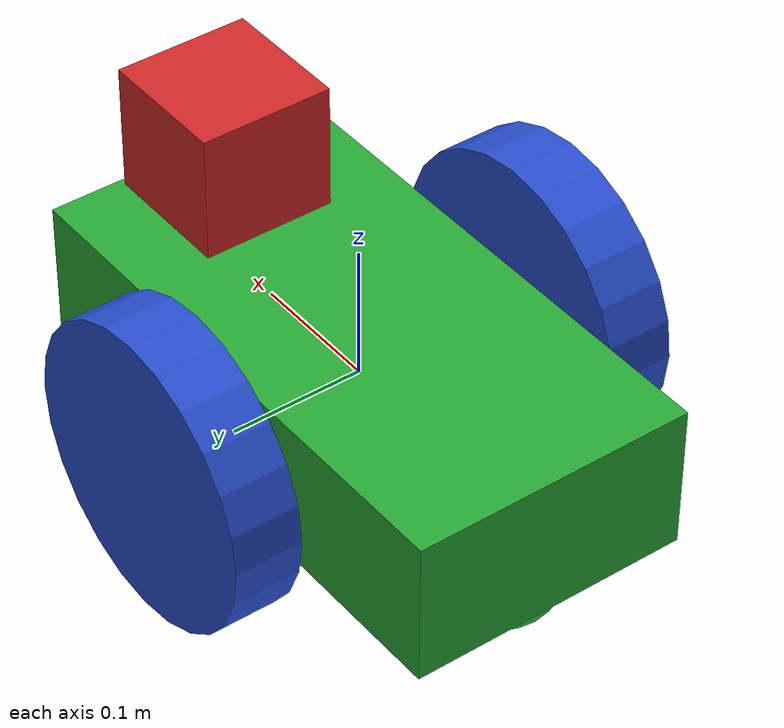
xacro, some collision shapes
<?xml version='1.0'?>

<robot name="my_robot" xmlns:xacro="http://www.ros.org/wiki/xacro">
<xacro:include filename="$(find my_robot)/urdf/my_robot.gazebo" />
  <link name="robot_footprint"></link>

  <joint name="robot_footprint_joint" type="fixed">
    <origin xyz="0 0 0" rpy="0 0 0" />
    <parent link="robot_footprint"/>
    <child link="chassis" />
  </joint>

  <link name='chassis'>
    <pose>0 0 0.1 0 0 0</pose>

    <inertial>
      <mass value="15.0"/>
      <origin xyz="0.0 0 0" rpy=" 0 0 0"/>
      <inertia
          ixx="0.1" ixy="0" ixz="0"
          iyy="0.1" iyz="0"
          izz="0.1"
      />
    </inertial>

    <collision name='collision'>
      <origin xyz="0 0 0" rpy=" 0 0 0"/>
      <geometry>
        <box size=".41 .21 .11"/>
      </geometry>
    </collision>

    <visual name='chassis_visual'>
      <origin xyz="0 0 0" rpy=" 0 0 0"/>
      <geometry>
        <box size=".41 .21 .11"/>
      </geometry>
    </visual>

    <collision name='back_caster_collision'>
      <origin xyz="-0.15 0 -0.05" rpy=" 0 0 0"/>
      <geometry>
        <sphere radius="0.0499"/>
      </geometry>
    </collision>

    <visual name='back_caster_visual'>
      <origin xyz="-0.15 0 -0.05" rpy=" 0 0 0"/>
      <geometry>
        <sphere radius="0.05"/>
      </geometry>
    </visual>

    <collision name='front_caster_collision'>
      <origin xyz="0.15 0 -0.05" rpy=" 0 0 0"/>
      <geometry>
        <sphere radius="0.0499"/>
      </geometry>
    </collision>

    <visual name='front_caster_visual'>
      <origin xyz="0.15 0 -0.05" rpy=" 0 0 0"/>
      <geometry>
        <sphere radius="0.05"/>
      </geometry>
    </visual>

  </link>

  <link name="left_wheel">
  <visual>
      <origin xyz="0 0 0 " rpy="0 1.5707 1.5707"/>
      <geometry>
        <cylinder length="0.05" radius="0.11"/>
      </geometry>
    </visual>
    <collision>
      <origin xyz="0 0 0 " rpy="0 1.5707 1.5707"/>
      <geometry>
        <cylinder length="0.05" radius="0.11"/>
      </geometry>
    </collision>
    <inertial>
      <mass value="5"/>
      <origin xyz="0 0 0" rpy = "0 1.5707 1.5707"/>
      <inertia
          ixx="0.1" ixy="0" ixz="0"
          iyy="0.1" iyz="0"
          izz="0.1"
          />
    </inertial>
  </link>

  <link name="right_wheel">
  <visual>
      <origin xyz="0 0 0 " rpy="0 1.5707 1.5707"/>
      <geometry>
        <cylinder length="0.05" radius="0.11"/>
      </geometry>
    </visual>
    <collision>
      <origin xyz="0 0 0 " rpy="0 1.5707 1.5707"/>
      <geometry>
        <cylinder length="0.05" radius="0.11"/>
      </geometry>
    </collision>
    <inertial>
      <mass value="5"/>
      <origin xyz="0 0 0" rpy = "0 1.5707 1.5707"/>
      <inertia
          ixx="0.1" ixy="0" ixz="0"
          iyy="0.1" iyz="0"
          izz="0.1"
          />
    </inertial>
  </link>

  <joint type="continuous" name="left_wheel_hinge">
    <origin xyz="0 0.15 0" rpy="0 0 0"/>
    <child link="left_wheel"/>
    <parent link="chassis"/>
    <axis xyz="0 1 0" rpy="0 0 0"/>
    <limit effort="10000" velocity="1000"/>
    <dynamics damping="1.0" friction="1.0"/>
  </joint>

  <joint type="continuous" name="right_wheel_hinge">
    <origin xyz="0 -0.15 0" rpy="0 0 0"/>
    <child link="right_wheel"/>
    <parent link="chassis"/>
    <axis xyz="0 1 0" rpy="0 0 0"/>
    <limit effort="10000" velocity="1000"/>
    <dynamics damping="1.0" friction="1.0"/>
  </joint>

  <link name="camera">
  <visual>
      <origin xyz="0 0 0 " rpy="0 0 0"/>
      <geometry>
         <box size="0.05 0.05 0.05"/>
      </geometry>
  </visual>
  <collision>
      <origin xyz="0 0 0 " rpy="0 0 0"/>
      <geometry>
         <box size="0.05 0.05 0.05"/>
      </geometry>
  </collision>

  <inertial>
      <mass value="0.1"/>
      <origin xyz="0 0 0" rpy = "0 0 0"/>
      <inertia
          ixx="1e-6" ixy="0" ixz="0"
          iyy="1e-6" iyz="0"
          izz="1e-6"
          />
    </inertial>
    </link>

  <joint name="camera_joint" type="fixed">
    <origin xyz="0.2 0 0" rpy="0 0 0" />
    <parent link="chassis"/>
    <child link="camera" />
    <axis xyz="0 1 0" rpy = "O O O"/>
  </joint>

  <link name="hokuyo">
  <collision>
      <origin xyz="0 0 0 " rpy="0 0 0"/>
      <geometry>
         <box size="0.1 0.1 0.1"/>
      </geometry>
  </collision>
  <visual>
      <origin xyz="0 0 0 " rpy="0 0 0"/>
      <geometry>
         <mesh filename= "package://my_robot/meshes/hokuyo.dae"/>
      </geometry>
  </visual>

  <inertial>
      <mass value="1e-5"/>
      <origin xyz="0 0 0" rpy = "0 0 0"/>
      <inertia
          ixx="1e-6" ixy="0" ixz="0"
          iyy="1e-6" iyz="0"
          izz="1e-6"
          />
    </inertial>
    </link>

    <joint name="hokuyo_joint" type="fixed">
    <origin xyz="0.15 0 0.1" rpy="0 0 0" />
    <parent link="chassis"/>
    <child link="hokuyo" />
    <axis xyz="0 1 0" rpy = "O O O"/>
  </joint>

  <gazebo reference="left_wheel">
    <material>Gazebo/Blue</material>
</gazebo>

<gazebo reference="right_wheel">
    <material>Gazebo/Blue</material>
</gazebo>

<gazebo reference="chassis">
    <material>Gazebo/Green</material>
</gazebo>

<gazebo reference="hokuyo">
    <material>Gazebo/Red</material>
</gazebo>

<gazebo reference="camera">
    <material>Gazebo/Black</material>
</gazebo>
</robot>
